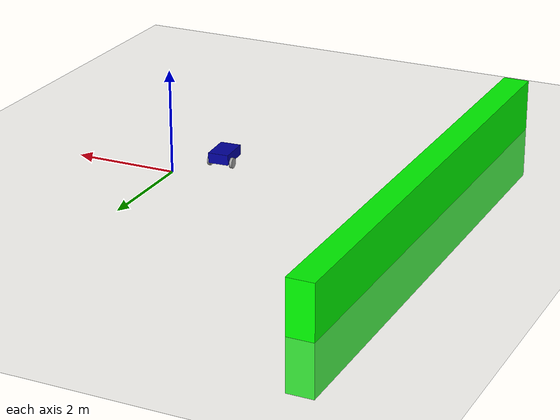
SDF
<sdf version="1.9">
 <world name="empty">
  <physics name="1ms" type="ignored">
   <max_step_size>0.001</max_step_size>
   <real_time_factor>1</real_time_factor>
   <real_time_update_rate>1000</real_time_update_rate>
  </physics>
  <plugin name="gz::sim::systems::Physics" filename="ignition-gazebo-physics-system"/>
  <plugin name="gz::sim::systems::UserCommands" filename="ignition-gazebo-user-commands-system"/>
  <plugin name="gz::sim::systems::SceneBroadcaster" filename="ignition-gazebo-scene-broadcaster-system"/>
  <plugin name="gz::sim::systems::Contact" filename="ignition-gazebo-contact-system"/>
  <gravity>0 0 -9.8</gravity>
  <magnetic_field>6e-06 2.3e-05 -4.2e-05</magnetic_field>
  <atmosphere type="adiabatic"/>
  <scene><ambient>0.4 0.4 0.4 1</ambient><background>0.7 0.7 0.7 1</background><shadows>true</shadows></scene>
  <plugin name="ignition::gazebo::systems::TriggeredPublisher" filename="libignition-gazebo-triggered-publisher-system.so">
   <input type="ignition.msgs.Int32" topic="/keyboard/keypress"><match field="data">16777235</match></input>
   <output type="ignition.msgs.Twist" topic="/cmd_vel">linear: {x: 0.5}, angular: {z: 0.0}</output>
  </plugin>
  <plugin name="ignition::gazebo::systems::TriggeredPublisher" filename="libignition-gazebo-triggered-publisher-system.so">
   <input type="ignition.msgs.Int32" topic="/keyboard/keypress"><match field="data">16777237</match></input>
   <output type="ignition.msgs.Twist" topic="/cmd_vel">linear: {x: -0.5}, angular: {z: 0.0}</output>
  </plugin>
  <plugin name="ignition::gazebo::systems::TriggeredPublisher" filename="libignition-gazebo-triggered-publisher-system.so">
   <input type="ignition.msgs.Int32" topic="/keyboard/keypress"><match field="data">16777236</match></input>
   <output type="ignition.msgs.Twist" topic="/cmd_vel">linear: {x: 0.0}, angular: {z: -0.5}</output>
  </plugin>
  <plugin name="ignition::gazebo::systems::TriggeredPublisher" filename="libignition-gazebo-triggered-publisher-system.so">
   <input type="ignition.msgs.Int32" topic="/keyboard/keypress"><match field="data">16777234</match></input>
   <output type="ignition.msgs.Twist" topic="/cmd_vel">linear: {x: 0.0}, angular: {z: 0.5}</output>
  </plugin>
  <plugin name="ignition::gazebo::systems::Imu" filename="libignition-gazebo-imu-system.so"/>
  <plugin name="ignition::gazebo::systems::Contact" filename="libignition-gazebo-contact-system.so"/>
  <plugin name="ignition::gazebo::systems::TriggeredPublisher" filename="libignition-gazebo-triggered-publisher-system.so">
   <input type="ignition.msgs.Boolean" topic="/wall/touched"><match>data: true</match></input>
   <output type="ignition.msgs.Twist" topic="/cmd_vel">linear: {x: 0.0}, angular: {z: 0.0}</output>
  </plugin>
  <plugin filename="libignition-gazebo-sensors-system.so" name="ignition::gazebo::systems::Sensors">
   <render_engine>ogre2</render_engine>
  </plugin>
  <model name="ground_plane">
   <static>true</static>
   <link name="link">
    <collision name="collision">
     <geometry><plane><normal>0 0 1</normal><size>100 100</size></plane></geometry>
    </collision>
    <visual name="visual">
     <geometry><plane><normal>0 0 1</normal><size>100 100</size></plane></geometry>
     <material>
      <ambient>0.8 0.8 0.8 1</ambient>
      <diffuse>0.8 0.8 0.8 1</diffuse>
      <specular>0.8 0.8 0.8 1</specular>
     </material>
    </visual>
    <inertial>
     <mass>1</mass>
     <inertia><ixx>1</ixx><ixy>0</ixy><ixz>0</ixz><iyy>1</iyy><iyz>0</iyz><izz>1</izz></inertia>
    </inertial>
   </link>
  </model>
  <model name="urdf_model">
   <frame name="lidar_frame" attached_to="camera_link"/>
   <link name="base_footprint">
    <inertial>
     <pose>0.023304 0 0.186607 0 -0 0</pose>
     <mass>5.5999999999999996</mass>
     <inertia>
      <ixx>0.67893400000000004</ixx>
      <ixy>0</ixy>
      <ixz>0.0132522</ixz>
      <iyy>0.90525800000000001</iyy>
      <iyz>0</iyz>
      <izz>0.36169899999999999</izz>
     </inertia>
    </inertial>
    <collision name="base_footprint_fixed_joint_lump__base_link_collision">
     <pose>0 0 0.2 0 0 0</pose>
     <geometry><box><size>0.6 0.4 0.2</size></box></geometry>
    </collision>
    <collision name="base_footprint_fixed_joint_lump__camera_link_collision_1">
     <pose>0.305 0 0.2 0 0 0</pose>
     <geometry><box><size>0.01 0.1 0.05</size></box></geometry>
    </collision>
    <collision name="base_footprint_fixed_joint_lump__caster_wheel_link_collision_2">
     <pose>0.2 0 0.05 0 0 0</pose>
     <geometry><sphere><radius>0.050000000000000003</radius></sphere></geometry>
     <surface><friction><ode><mu>0.10000000000000001</mu><mu2>0.10000000000000001</mu2></ode></friction></surface>
    </collision>
    <visual name="base_footprint_fixed_joint_lump__base_link_visual">
     <pose>0 0 0.2 0 0 0</pose>
     <geometry><box><size>0.6 0.4 0.2</size></box></geometry>
     <material><diffuse>0 0 0.625 1</diffuse><ambient>0 0 0.625 1</ambient></material>
    </visual>
    <visual name="base_footprint_fixed_joint_lump__camera_link_visual_1">
     <pose>0.305 0 0.2 0 0 0</pose>
     <geometry><box><size>0.01 0.1 0.05</size></box></geometry>
     <material><diffuse>0.625 0.625 0.625 1</diffuse><ambient>0.625 0.625 0.625 1</ambient></material>
    </visual>
    <visual name="base_footprint_fixed_joint_lump__caster_wheel_link_visual_2">
     <pose>0.2 0 0.05 0 0 0</pose>
     <geometry><sphere><radius>0.050000000000000003</radius></sphere></geometry>
     <material><diffuse>0.625 0.625 0.625 1</diffuse><ambient>0.625 0.625 0.625 1</ambient></material>
    </visual>
    <sensor name="imu_sensor" type="imu">
     <topic>imu</topic>
     <update_rate>1</update_rate>
     <enable_metrics>false</enable_metrics>
     <imu>
      <orientation_reference_frame>
       <localization>CUSTOM</localization>
       <custom_rpy>0 0 0</custom_rpy>
       <grav_dir_x>1 0 0</grav_dir_x>
      </orientation_reference_frame>
      <angular_velocity>
       <x>
        <noise type="none">
         <mean>0</mean>
         <stddev>0</stddev>
         <bias_mean>0</bias_mean>
         <bias_stddev>0</bias_stddev>
         <dynamic_bias_stddev>0</dynamic_bias_stddev>
         <dynamic_bias_correlation_time>0</dynamic_bias_correlation_time>
         <precision>0</precision>
        </noise>
       </x>
       <y>
        <noise type="none">
         <mean>0</mean>
         <stddev>0</stddev>
         <bias_mean>0</bias_mean>
         <bias_stddev>0</bias_stddev>
         <dynamic_bias_stddev>0</dynamic_bias_stddev>
         <dynamic_bias_correlation_time>0</dynamic_bias_correlation_time>
         <precision>0</precision>
        </noise>
       </y>
       <z>
        <noise type="none">
         <mean>0</mean>
         <stddev>0</stddev>
         <bias_mean>0</bias_mean>
         <bias_stddev>0</bias_stddev>
         <dynamic_bias_stddev>0</dynamic_bias_stddev>
         <dynamic_bias_correlation_time>0</dynamic_bias_correlation_time>
         <precision>0</precision>
        </noise>
       </z>
      </angular_velocity>
      <linear_acceleration>
       <x>
        <noise type="none">
         <mean>0</mean>
         <stddev>0</stddev>
         <bias_mean>0</bias_mean>
         <bias_stddev>0</bias_stddev>
         <dynamic_bias_stddev>0</dynamic_bias_stddev>
         <dynamic_bias_correlation_time>0</dynamic_bias_correlation_time>
         <precision>0</precision>
        </noise>
       </x>
       <y>
        <noise type="none">
         <mean>0</mean>
         <stddev>0</stddev>
         <bias_mean>0</bias_mean>
         <bias_stddev>0</bias_stddev>
         <dynamic_bias_stddev>0</dynamic_bias_stddev>
         <dynamic_bias_correlation_time>0</dynamic_bias_correlation_time>
         <precision>0</precision>
        </noise>
       </y>
       <z>
        <noise type="none">
         <mean>0</mean>
         <stddev>0</stddev>
         <bias_mean>0</bias_mean>
         <bias_stddev>0</bias_stddev>
         <dynamic_bias_stddev>0</dynamic_bias_stddev>
         <dynamic_bias_correlation_time>0</dynamic_bias_correlation_time>
         <precision>0</precision>
        </noise>
       </z>
      </linear_acceleration>
      <enable_orientation>true</enable_orientation>
     </imu>
    </sensor>
    <sensor name="gpu_lidar" type="gpu_lidar">
     <pose relative_to="lidar_frame">0 0 0 0 0 0</pose>
     <topic>lidar</topic>
     <update_rate>10</update_rate>
     <ray>
      <scan>
       <horizontal>
        <samples>640</samples>
        <resolution>1</resolution>
        <min_angle>-1.396263</min_angle>
        <max_angle>1.396263</max_angle>
       </horizontal>
       <vertical>
        <samples>1</samples>
        <resolution>0.01</resolution>
        <min_angle>0</min_angle>
        <max_angle>0</max_angle>
       </vertical>
      </scan>
      <range><min>0.08</min><max>10.0</max><resolution>0.01</resolution></range>
     </ray>
     <always_on>1</always_on>
     <visualize>true</visualize>
    </sensor>
   </link>
   <joint name="base_left_wheel_joint" type="revolute">
    <parent>base_footprint</parent>
    <child>left_wheel_link</child>
    <axis>
     <xyz>0 1 0</xyz>
     <limit>
      <lower>-10000000000000000</lower>
      <upper>10000000000000000</upper>
      <effort>inf</effort>
      <velocity>inf</velocity>
      <stiffness>100000000</stiffness>
      <dissipation>1</dissipation>
     </limit>
     <dynamics>
      <spring_reference>0</spring_reference>
      <spring_stiffness>0</spring_stiffness>
      <damping>0</damping>
      <friction>0</friction>
     </dynamics>
    </axis>
   </joint>
   <link name="left_wheel_link">
    <pose>-0.15 0.225 0.1 -0 -0.949621 0</pose>
    <inertial>
     <pose>0 0 0 1.5708 -0 0</pose>
     <mass>1</mass>
     <inertia>
      <ixx>0.010833300000000001</ixx>
      <ixy>0</ixy>
      <ixz>0</ixz>
      <iyy>0.010833300000000001</iyy>
      <iyz>0</iyz>
      <izz>0.02</izz>
     </inertia>
    </inertial>
    <collision name="left_wheel_link_collision">
     <pose>0 0 0 1.570796326794896 0 0</pose>
     <geometry>
      <cylinder><length>0.050000000000000003</length><radius>0.10000000000000001</radius></cylinder>
     </geometry>
    </collision>
    <visual name="left_wheel_link_visual">
     <pose>0 0 0 1.570796326794896 0 0</pose>
     <geometry>
      <cylinder><length>0.050000000000000003</length><radius>0.10000000000000001</radius></cylinder>
     </geometry>
     <material><diffuse>0.625 0.625 0.625 1</diffuse><ambient>0.625 0.625 0.625 1</ambient></material>
    </visual>
   </link>
   <joint name="base_right_wheel_joint" type="revolute">
    <parent>base_footprint</parent>
    <child>right_wheel_link</child>
    <axis>
     <xyz>0 1 0</xyz>
     <limit>
      <lower>-10000000000000000</lower>
      <upper>10000000000000000</upper>
      <effort>inf</effort>
      <velocity>inf</velocity>
      <stiffness>100000000</stiffness>
      <dissipation>1</dissipation>
     </limit>
     <dynamics>
      <spring_reference>0</spring_reference>
      <spring_stiffness>0</spring_stiffness>
      <damping>0</damping>
      <friction>0</friction>
     </dynamics>
    </axis>
   </joint>
   <link name="right_wheel_link">
    <pose>-0.15 -0.225 0.1 3.14159 -1.26166 -3.14159</pose>
    <inertial>
     <pose>0 0 0 1.5708 -0 0</pose>
     <mass>1</mass>
     <inertia>
      <ixx>0.010833300000000001</ixx>
      <ixy>0</ixy>
      <ixz>0</ixz>
      <iyy>0.010833300000000001</iyy>
      <iyz>0</iyz>
      <izz>0.02</izz>
     </inertia>
    </inertial>
    <collision name="right_wheel_link_collision">
     <pose>0 0 0 1.570796326794896 0 0</pose>
     <geometry>
      <cylinder><length>0.050000000000000003</length><radius>0.10000000000000001</radius></cylinder>
     </geometry>
    </collision>
    <visual name="right_wheel_link_visual">
     <pose>0 0 0 1.570796326794896 0 0</pose>
     <geometry>
      <cylinder><length>0.050000000000000003</length><radius>0.10000000000000001</radius></cylinder>
     </geometry>
     <material><diffuse>0.625 0.625 0.625 1</diffuse><ambient>0.625 0.625 0.625 1</ambient></material>
    </visual>
   </link>
   <frame name="base_camera_joint" attached_to="base_link"><pose>0.305 0 0.1 0 -0 0</pose></frame>
   <frame name="camera_link" attached_to="base_camera_joint"/>
   <frame name="base_caster_wheel_joint" attached_to="base_link"><pose>0.2 0 -0.05 0 -0 0</pose></frame>
   <frame name="caster_wheel_link" attached_to="base_caster_wheel_joint"/>
   <frame name="base_joint" attached_to="base_footprint"><pose>0 0 0.1 0 -0 0</pose></frame>
   <frame name="base_link" attached_to="base_joint"/>
   <pose>-0.685731 -0.797528 -0 0 0 -1.50312</pose>
   <static>false</static>
   <plugin name="ignition::gazebo::systems::DiffDrive" filename="libignition-gazebo-diff-drive-system.so">
    <left_joint>base_left_wheel_joint</left_joint>
    <right_joint>base_right_wheel_joint</right_joint>
    <wheel_separation>0.45</wheel_separation>
    <wheel_radius>0.1</wheel_radius>
    <odom_publish_frecuency>1</odom_publish_frecuency>
    <topic>cmd_vel</topic>
   </plugin>
  </model>
  <model name="wall">
   <static>true</static>
   <pose>-5 0 0 0 0 0</pose>
   <link name="box">
    <visual name="visual">
     <geometry><box><size>0.5 10.0 2.0</size></box></geometry>
     <material>
      <ambient>0.0 1.0 0.0 1</ambient>
      <diffuse>0.0 1.0 0.0 1</diffuse>
      <specular>0.0 1.0 0.0 1</specular>
     </material>
    </visual>
    <collision name="collision"><geometry><box><size>0.5 10.0 2.0</size></box></geometry></collision>
    <sensor name="sensor_contact" type="contact"><contact><collision>collision</collision></contact></sensor>
   </link>
   <plugin filename="libignition-gazebo-touchplugin-system.so" name="ignition::gazebo::systems::TouchPlugin">
    <target>urdf_model</target>
    <namespace>wall</namespace>
    <time>0.001</time>
    <enabled>true</enabled>
   </plugin>
  </model>
  <light name="sun" type="directional">
   <pose>0 0 10 0 -0 0</pose>
   <intensity>1</intensity>
   <direction>-0.5 0.1 -0.9</direction>
   <diffuse>0.8 0.8 0.8 1</diffuse>
   <specular>0.2 0.2 0.2 1</specular>
   <attenuation>
    <range>1000</range>
    <linear>0.01</linear>
    <constant>0.90000000000000002</constant>
    <quadratic>0.001</quadratic>
   </attenuation>
   <spot><inner_angle>0</inner_angle><outer_angle>0</outer_angle><falloff>0</falloff></spot>
  </light>
 </world>
</sdf>
